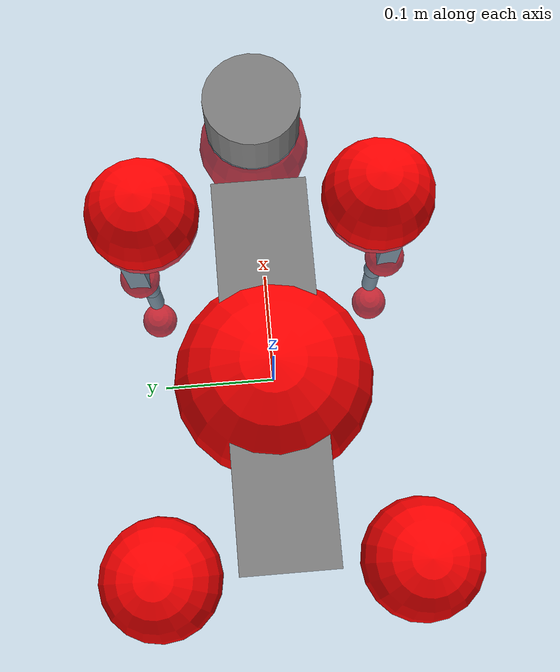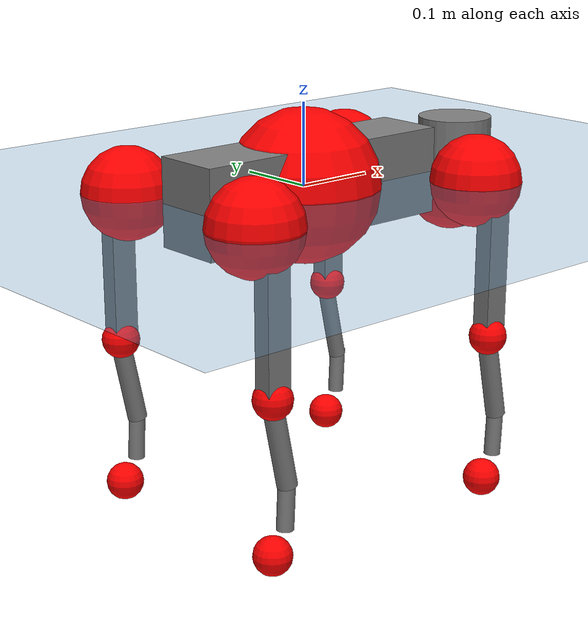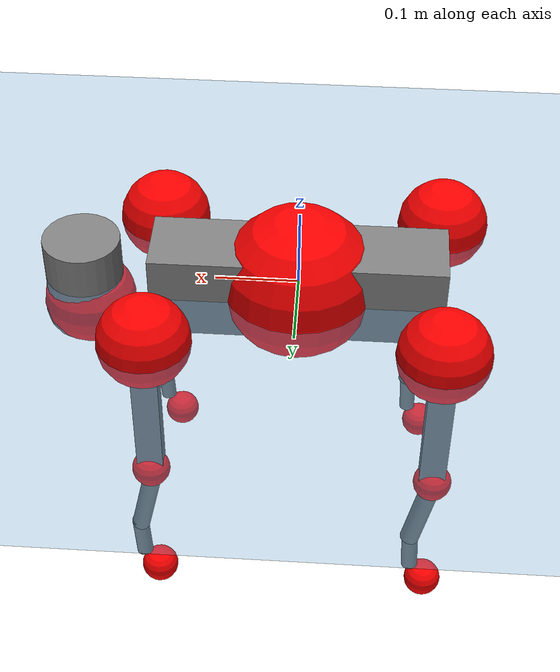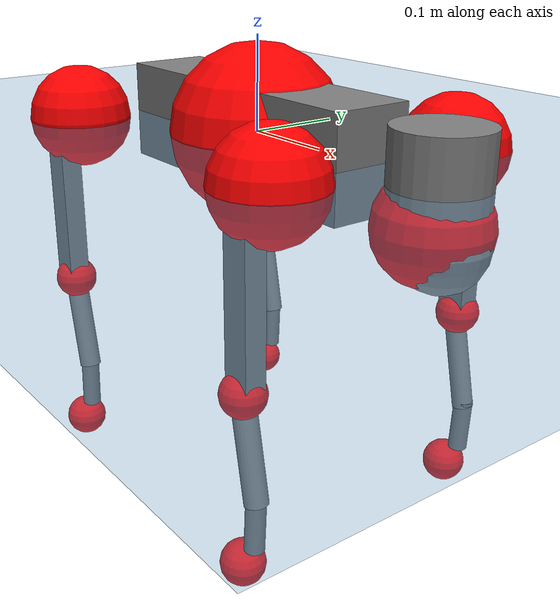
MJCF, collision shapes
<mujoco model="go2">
  <compiler angle="radian" assetdir="assets" balanceinertia="true" inertiafromgeom="false"/>

  <option timestep="0.005" density="1.2" viscosity="2e-05"/>

  <size nkey="1"/>

  <visual>
    <quality shadowsize="8192"/>
    <map shadowclip="0.5"/>
  </visual>

  <default>
    <default class="/">
      <geom contype="0" conaffinity="0" group="1" solref="-1000 -80"/>
      <site size="0.01 0.005 0.005" group="5"/>
      <general forcelimited="true" biastype="affine" gainprm="20" biasprm="0 -20 -0.5"/>
      <default class="go2">
        <joint armature="0.01" damping="0.01" frictionloss="0.2"/>
        <geom condim="1" margin="0.001"/>
        <default class="visual">
          <geom type="mesh" group="2"/>
        </default>
        <default class="collision">
          <geom group="3"/>
          <default class="foot">
            <geom size="0.022 0 0" condim="6" priority="1" friction="0.8 0.02 0.01" solimp="0.015 1 0.022"/>
          </default>
        </default>
        <default class="reward_collision_sphere">
          <geom group="5" rgba="1 0 0 1"/>
        </default>
      </default>
    </default>
  </default>

  <asset>
    <texture type="skybox" colorspace="auto" name="//unnamed_texture_0" builtin="gradient" rgb1="0.95 0.95 0.95" rgb2="0.95 0.95 0.95" width="100" height="600"/>
    <texture type="2d" colorspace="auto" name="texplane" builtin="checker" rgb1="0.345 0.575 0.748" rgb2="0.345 0.575 0.748" markrgb="1 1 1" width="512" height="512"/>
    <material name="MatPlane" class="/" texture="texplane" texuniform="true" texrepeat="2 2" specular="0.9"/>
    <material name="metal" class="/" rgba="0.9 0.95 0.95 1"/>
    <material name="black" class="/" rgba="0 0 0 1"/>
    <material name="white" class="/"/>
    <material name="gray" class="/" rgba="0.671705 0.692426 0.77427 1"/>
    <mesh name="base_0" class="/" file="base_0.obj"/>
    <mesh name="base_1" class="/" file="base_1.obj"/>
    <mesh name="base_2" class="/" file="base_2.obj"/>
    <mesh name="base_3" class="/" file="base_3.obj"/>
    <mesh name="base_4" class="/" file="base_4.obj"/>
    <mesh name="hip_0" class="/" file="hip_0.obj"/>
    <mesh name="hip_1" class="/" file="hip_1.obj"/>
    <mesh name="thigh_0" class="/" file="thigh_0.obj"/>
    <mesh name="thigh_1" class="/" file="thigh_1.obj"/>
    <mesh name="thigh_mirror_0" class="/" file="thigh_mirror_0.obj"/>
    <mesh name="thigh_mirror_1" class="/" file="thigh_mirror_1.obj"/>
    <mesh name="calf_0" class="/" file="calf_0.obj"/>
    <mesh name="calf_1" class="/" file="calf_1.obj"/>
    <mesh name="calf_mirror_0" class="/" file="calf_mirror_0.obj"/>
    <mesh name="calf_mirror_1" class="/" file="calf_mirror_1.obj"/>
    <mesh name="foot" class="/" file="foot.obj"/>
  </asset>

  <worldbody>
    <geom name="floor" class="/" size="100 100 0.125" type="plane" group="0" material="MatPlane"/>
    <light name="toplight_shadow" class="/" pos="0 0 5" dir="0.0990148 0.0990148 -0.990148" type="directional" ambient="0.04 0.04 0.04" diffuse="0.55 0.55 0.55" specular="0.12 0.12 0.12"/>
    <light name="toplight_fill" class="/" pos="0 0 5" dir="0.0990148 0.0990148 -0.990148" type="directional" castshadow="false" ambient="0.04 0.04 0.04" diffuse="0.3 0.3 0.3" specular="0.08 0.08 0.08"/>
    <body name="trunk" childclass="go2" pos="0.000265557 -0.000307117 0.000657952" quat="1 0.000678384 -0.000306319 0.000109834">
      <inertial pos="0.0171557 -0.00294578 -0.00602689" quat="0.00238348 0.713443 -0.000823397 0.700709" mass="5.71972" diaginertia="0.0648017 0.0999808 0.0128455"/>
      <joint name="//unnamed_joint_0" type="free" armature="0" damping="0" frictionloss="0"/>
      <geom name="//unnamed_geom_1" class="visual" material="black" mesh="base_0"/>
      <geom name="//unnamed_geom_2" class="visual" material="black" mesh="base_1"/>
      <geom name="//unnamed_geom_3" class="visual" material="black" mesh="base_2"/>
      <geom name="//unnamed_geom_4" class="visual" material="white" mesh="base_3"/>
      <geom name="//unnamed_geom_5" class="visual" material="gray" mesh="base_4"/>
      <geom name="trunk_1" class="collision" size="0.175226 0.0435503 0.0530988" type="box"/>
      <geom name="trunk_2" class="collision" size="0.0465779 0.0419201" pos="0.258189 0 0.00882255" type="cylinder"/>
      <geom name="trunk_3" class="collision" size="0.0437832" pos="0.265437 0 -0.0529353"/>
      <geom name="//unnamed_geom_9" class="reward_collision_sphere" size="0.0931557"/>
      <geom name="//unnamed_geom_10" class="reward_collision_sphere" size="0.0558934" pos="0.25366 0 -0.0397015"/>
      <site name="imu" pos="-0.0107378 -0.000564823 0.0248348" size="0.00931557"/>
      <camera name="track" pos="0 -2.01298 0" quat="0.707107 0.707107 0 0" mode="trackcom"/>
      <camera name="ego_camera" pos="0.282649 0 0.0397015" quat="-0.5 -0.5 0.5 0.5"/>
      <body name="FL_hip" pos="0.171695 0.0438911 -0.00259474" quat="1 2.40764e-05 3.07733e-05 -0.00049562">
        <inertial pos="-0.0048676 -0.000570564 0.000187607" quat="0.497192 0.499365 0.505367 0.498036" mass="0.548969" diaginertia="0.000531015 0.000580705 0.000249882"/>
        <joint name="FL_hip_joint" pos="0 0 0" axis="0.999929 0.011837 -0.00120085" range="-1.04688 1.07315" armature="0.00936226" damping="0.0171103" frictionloss="0.161895"/>
        <geom name="//unnamed_geom_11" class="visual" material="metal" mesh="hip_0"/>
        <geom name="//unnamed_geom_12" class="visual" material="gray" mesh="hip_1"/>
        <geom name="//unnamed_geom_13" class="collision" size="0.0428516 0.0186311" pos="0 0.0805191 0" quat="0.707107 0.707107 0 0" type="cylinder"/>
        <geom name="//unnamed_geom_14" class="reward_collision_sphere" size="0.0558934" pos="0 0.0704543 0"/>
        <body name="FL_thigh" pos="-0.00304586 0.0978063 0.00265761" quat="0.999999 -8.7152e-05 -0.00121698 0.000322373">
          <inertial pos="-0.00379384 -0.0224936 -0.0266615" quat="0.828206 0.0792415 -0.00755986 0.554742" mass="0.908683" diaginertia="0.00367037 0.00593721 0.000475609"/>
          <joint name="FL_thigh_joint" pos="0 0 0" axis="-0.00186704 0.999996 0.0021435" stiffness="0.00927707" range="-1.51493 3.54353" armature="0.009454" damping="0.0176591" frictionloss="0.165374"/>
          <geom name="//unnamed_geom_15" class="visual" material="metal" mesh="thigh_0"/>
          <geom name="//unnamed_geom_16" class="visual" material="gray" mesh="thigh_1"/>
          <geom name="//unnamed_geom_17" class="collision" size="0.0992108 0.0114116 0.0158365" pos="0 0 -0.0939601" quat="0.707107 0 0.707107 0" type="box"/>
          <body name="FL_calf" pos="0.000313851 0.00190804 -0.187628" quat="1 0.000228163 0.000232218 8.91477e-05">
            <inertial pos="0.00530107 -0.00119001 -0.126272" quat="0.711596 0.000789738 -0.00240612 0.702584" mass="0.198085" diaginertia="0.000887955 0.00151242 2.84822e-05"/>
            <joint name="FL_calf_joint" pos="0 0 0" axis="0.0168446 0.999848 -0.00441058" range="-2.67174 -0.82717" armature="0.00953997" damping="0.00204279" frictionloss="0.191563"/>
            <geom name="//unnamed_geom_18" class="visual" material="gray" mesh="calf_0"/>
            <geom name="//unnamed_geom_19" class="visual" material="black" mesh="calf_1"/>
            <geom name="FL_calf0" class="collision" size="0.0111787 0.0558934" pos="0.00724742 0 -0.0529353" quat="0.994493 0 -0.104807 0" type="cylinder"/>
            <geom name="//unnamed_geom_21" class="collision" size="0.0102471 0.0302756" pos="0.0181186 0 -0.130574" quat="0.999688 0 0.0249974 0" type="cylinder"/>
            <geom name="//unnamed_geom_22" class="visual" pos="0 0 -0.18792" quat="1 0 0 0" material="black" mesh="foot"/>
            <geom name="FL_foot" class="foot" size="0.0157433" pos="-0.00181186 0 -0.18792"/>
            <geom name="//unnamed_geom_24" class="reward_collision_sphere" size="0.0232889"/>
            <geom name="//unnamed_geom_25" class="reward_collision_sphere" size="0.0232889" pos="-0.00181186 0 -0.18792"/>
            <site name="FL_foot" class="foot" pos="-0.00181186 0 -0.18792" size="0.00931557"/>
          </body>
        </body>
      </body>
      <body name="FR_hip" pos="0.173093 -0.045787 -0.000545227" quat="1 0.000110971 0.00023809 0.000114405">
        <inertial pos="-0.00715362 -0.00344509 -0.0030443" quat="0.492952 0.50082 0.501615 0.504539" mass="0.545752" diaginertia="0.000513882 0.000627069 0.000244463"/>
        <joint name="FR_hip_joint" pos="0 0 0" axis="0.999892 0.0136466 0.00538147" stiffness="0.00274257" range="-1.06982 1.04094" armature="0.00956426" damping="0" frictionloss="0.194411"/>
        <geom name="//unnamed_geom_26" class="visual" pos="0 1.08228e-09 4.64213e-08" quat="4.63268e-05 1 0 0" material="metal" mesh="hip_0"/>
        <geom name="//unnamed_geom_27" class="visual" pos="0 1.75451e-09 -1.14818e-07" quat="4.63268e-05 1 0 0" material="gray" mesh="hip_1"/>
        <geom name="//unnamed_geom_28" class="collision" size="0.0428516 0.0186311" pos="0 -0.0805191 0" quat="0.707107 0.707107 0 0" type="cylinder"/>
        <geom name="//unnamed_geom_29" class="reward_collision_sphere" size="0.0558934" pos="0 -0.0704543 0"/>
        <body name="FR_thigh" pos="0.00244584 -0.0985712 -0.0021157" quat="0.999999 0.000313609 -0.000226629 0.00123934">
          <inertial pos="-0.00109296 0.0222658 -0.0310674" quat="0.560552 -0.0152732 0.0833399 0.823773" mass="0.974667" diaginertia="0.00355478 0.00588639 0.000489527"/>
          <joint name="FR_thigh_joint" pos="0 0 0" axis="-0.00227304 -0.999997 -0.000541695" range="-3.47909 1.58448" armature="0.00822856" damping="0.0162997" frictionloss="0.198604"/>
          <geom name="//unnamed_geom_30" class="visual" material="metal" mesh="thigh_mirror_0"/>
          <geom name="//unnamed_geom_31" class="visual" material="gray" mesh="thigh_mirror_1"/>
          <geom name="//unnamed_geom_32" class="collision" size="0.0992108 0.0114116 0.0158365" pos="0 0 -0.0939601" quat="0.707107 0 0.707107 0" type="box"/>
          <body name="FR_calf" pos="-0.00227432 -0.000973295 -0.188531" quat="0.999999 -0.00116747 -0.000193301 1.80238e-05">
            <inertial pos="0.00282752 0.000822831 -0.125104" quat="0.698605 0.00177328 0.00724759 0.715469" mass="0.207858" diaginertia="0.000955714 0.00153414 2.94399e-05"/>
            <joint name="FR_calf_joint" pos="0 0 0" axis="0.00485443 -0.999955 0.00812238" range="0.789178 2.67394" armature="0.010769" damping="0.0194148" frictionloss="0.200653"/>
            <geom name="//unnamed_geom_33" class="visual" material="gray" mesh="calf_mirror_0"/>
            <geom name="//unnamed_geom_34" class="visual" material="black" mesh="calf_mirror_1"/>
            <geom name="FR_calf0" class="collision" size="0.0121102 0.0558934" pos="0.00905928 0 -0.0529353" quat="0.995004 0 -0.0998334 0" type="cylinder"/>
            <geom name="//unnamed_geom_36" class="collision" size="0.0102471 0.0302756" pos="0.0181186 0 -0.130574" quat="0.999688 0 0.0249974 0" type="cylinder"/>
            <geom name="//unnamed_geom_37" class="visual" pos="0 0 -0.18792" quat="1 0 0 0" material="black" mesh="foot"/>
            <geom name="FR_foot" class="foot" size="0.0201008" pos="-0.00181186 0 -0.18792"/>
            <geom name="//unnamed_geom_39" class="reward_collision_sphere" size="0.0232889"/>
            <geom name="//unnamed_geom_40" class="reward_collision_sphere" size="0.0232889" pos="-0.00181186 0 -0.18792"/>
            <site name="FR_foot" class="foot" pos="-0.00181186 0 -0.18792" size="0.00931557"/>
          </body>
        </body>
      </body>
      <body name="RL_hip" pos="-0.172416 0.0447126 -0.00278928" quat="1 -5.35827e-05 -1.61035e-05 -3.64638e-05">
        <inertial pos="0.00491766 0.0049836 -0.00103346" quat="0.512193 0.501657 0.48519 0.500589" mass="0.564089" diaginertia="0.000566905 0.00063885 0.000257257"/>
        <joint name="RL_hip_joint" pos="0 0 0" axis="-0.999989 -0.00162411 0.0044351" range="-1.05998 1.05482" armature="0.0098961" damping="0" frictionloss="0.185333"/>
        <geom name="//unnamed_geom_41" class="visual" pos="-2.06231e-10 0 -4.04261e-08" quat="4.63268e-05 0 1 0" material="metal" mesh="hip_0"/>
        <geom name="//unnamed_geom_42" class="visual" pos="-3.34325e-10 0 -3.58522e-08" quat="4.63268e-05 0 1 0" material="gray" mesh="hip_1"/>
        <geom name="//unnamed_geom_43" class="collision" size="0.0428516 0.0186311" pos="0 0.0805191 0" quat="0.707107 0.707107 0 0" type="cylinder"/>
        <geom name="//unnamed_geom_44" class="reward_collision_sphere" size="0.0558934" pos="0 0.0704543 0"/>
        <body name="RL_thigh" pos="0.00047104 0.0950335 0.00134544" quat="1 0.000401415 -0.000144395 0.000220326">
          <inertial pos="-0.00510117 -0.021479 -0.0311966" quat="0.82876 0.0848619 -0.0222051 0.552687" mass="0.886213" diaginertia="0.00341852 0.00602591 0.000458682"/>
          <joint name="RL_thigh_joint" pos="0 0 0" axis="0.00314049 0.999979 -0.00559545" stiffness="0.0123853" range="-0.559475 4.48542" armature="0.0089576" damping="0" frictionloss="0.188319"/>
          <geom name="//unnamed_geom_45" class="visual" material="metal" mesh="thigh_0"/>
          <geom name="//unnamed_geom_46" class="visual" material="gray" mesh="thigh_1"/>
          <geom name="//unnamed_geom_47" class="collision" size="0.0992108 0.0114116 0.0158365" pos="0 0 -0.0939601" quat="0.707107 0 0.707107 0" type="box"/>
          <body name="RL_calf" pos="-0.00127542 0.000821509 -0.188781" quat="1 -0.00018732 -0.000166393 -0.000124591">
            <inertial pos="0.00752045 0.00211715 -0.125256" quat="0.712111 0.0137995 -0.00569832 0.701908" mass="0.199557" diaginertia="0.000897942 0.00159698 2.91015e-05"/>
            <joint name="RL_calf_joint" pos="0 0 0" axis="0.00364914 0.999989 -0.00297567" stiffness="0.00797627" range="-2.66755 -0.890438" armature="0.0105035" damping="0.0178671" frictionloss="0.16035"/>
            <geom name="//unnamed_geom_48" class="visual" material="gray" mesh="calf_0"/>
            <geom name="//unnamed_geom_49" class="visual" material="black" mesh="calf_1"/>
            <geom name="RL_calf0" class="collision" size="0.0121102 0.0558934" pos="0.00905928 0 -0.0529353" quat="0.995004 0 -0.0998334 0" type="cylinder"/>
            <geom name="//unnamed_geom_51" class="collision" size="0.0102471 0.0302756" pos="0.0181186 0 -0.130574" quat="0.999688 0 0.0249974 0" type="cylinder"/>
            <geom name="//unnamed_geom_52" class="visual" pos="0 0 -0.18792" quat="1 0 0 0" material="black" mesh="foot"/>
            <geom name="RL_foot" class="foot" size="0.0186094" pos="-0.00181186 0 -0.18792"/>
            <geom name="//unnamed_geom_54" class="reward_collision_sphere" size="0.0232889"/>
            <geom name="//unnamed_geom_55" class="reward_collision_sphere" size="0.0232889" pos="-0.00181186 0 -0.18792"/>
            <site name="RL_foot" class="foot" pos="-0.00181186 0 -0.18792" size="0.00931557"/>
          </body>
        </body>
      </body>
      <body name="RR_hip" pos="-0.17342 -0.0482708 0.0018713" quat="1 -0.000361489 -7.37373e-05 -0.000355639">
        <inertial pos="0.00249805 0.000246419 -0.0025346" quat="0.50116 0.491204 0.496796 0.510637" mass="0.553591" diaginertia="0.000524245 0.000604841 0.000251051"/>
        <joint name="RR_hip_joint" pos="0 0 0" axis="-0.999917 -0.00751818 -0.0104736" range="-1.09988 1.08572" armature="0.00876454" damping="0" frictionloss="0.188046"/>
        <geom name="//unnamed_geom_56" class="visual" pos="2.09713e-10 1.08228e-09 -8.68474e-08" quat="2.14617e-09 4.63268e-05 4.63268e-05 -1" material="metal" mesh="hip_0"/>
        <geom name="//unnamed_geom_57" class="visual" pos="3.25714e-10 1.75451e-09 7.89655e-08" quat="2.14617e-09 4.63268e-05 4.63268e-05 -1" material="gray" mesh="hip_1"/>
        <geom name="//unnamed_geom_58" class="collision" size="0.0428516 0.0186311" pos="0 -0.0805191 0" quat="0.707107 0.707107 0 0" type="cylinder"/>
        <geom name="//unnamed_geom_59" class="reward_collision_sphere" size="0.0558934" pos="0 -0.0704543 0"/>
        <body name="RR_thigh" pos="0.00223341 -0.0950379 -0.00143953" quat="0.999999 -0.000644809 -0.000624961 0.000851482">
          <inertial pos="-0.00274713 0.0248189 -0.029301" quat="0.550672 -0.0195105 0.0858378 0.830067" mass="0.870528" diaginertia="0.00339334 0.00590013 0.000461074"/>
          <joint name="RR_thigh_joint" pos="0 0 0" axis="0.0018017 -0.999998 0.00131098" stiffness="0.00209793" range="-4.49068 0.520859" armature="0.00976464" damping="0.0204815" frictionloss="0.185243"/>
          <geom name="//unnamed_geom_60" class="visual" material="metal" mesh="thigh_mirror_0"/>
          <geom name="//unnamed_geom_61" class="visual" material="gray" mesh="thigh_mirror_1"/>
          <geom name="//unnamed_geom_62" class="collision" size="0.0992108 0.0114116 0.0158365" pos="0 0 -0.0939601" quat="0.707107 0 0.707107 0" type="box"/>
          <body name="RR_calf" pos="0.000978267 0.00208523 -0.187922" quat="0.999999 0.000276289 0.000663301 0.00093345">
            <inertial pos="0.00832178 -0.000840076 -0.125121" quat="0.703647 -0.0114104 0.0137803 0.710324" mass="0.197339" diaginertia="0.000883978 0.00151245 2.76536e-05"/>
            <joint name="RR_calf_joint" pos="0 0 0" axis="-0.00732912 -0.999965 -0.0039605" range="0.830331 2.77702" armature="0.00921945" damping="0.0194474" frictionloss="0.199838"/>
            <geom name="//unnamed_geom_63" class="visual" material="gray" mesh="calf_mirror_0"/>
            <geom name="//unnamed_geom_64" class="visual" material="black" mesh="calf_mirror_1"/>
            <geom name="RR_calf0" class="collision" size="0.0121102 0.0558934" pos="0.00905928 0 -0.0529353" quat="0.995004 0 -0.0998334 0" type="cylinder"/>
            <geom name="//unnamed_geom_66" class="collision" size="0.0102471 0.0302756" pos="0.0181186 0 -0.130574" quat="0.999688 0 0.0249974 0" type="cylinder"/>
            <geom name="//unnamed_geom_67" class="visual" pos="0 0 -0.18792" quat="1 0 0 0" material="black" mesh="foot"/>
            <geom name="RR_foot" class="foot" size="0.0189978" pos="-0.00181186 0 -0.18792"/>
            <geom name="//unnamed_geom_69" class="reward_collision_sphere" size="0.0232889"/>
            <geom name="//unnamed_geom_70" class="reward_collision_sphere" size="0.0232889" pos="-0.00181186 0 -0.18792"/>
            <site name="RR_foot" class="foot" pos="-0.00181186 0 -0.18792" size="0.00931557"/>
          </body>
        </body>
      </body>
    </body>
  </worldbody>

  <contact>
    <pair class="/" geom1="floor" geom2="FL_foot" name="//unnamed_contact_0"/>
    <pair class="/" geom1="floor" geom2="FR_foot" name="//unnamed_contact_1"/>
    <pair class="/" geom1="floor" geom2="RL_foot" name="//unnamed_contact_2"/>
    <pair class="/" geom1="floor" geom2="RR_foot" name="//unnamed_contact_3"/>
  </contact>

  <actuator>
    <general name="FL_hip" class="/" joint="FL_hip_joint" forcerange="-19.6871 19.6871" gainprm="17.7055" biasprm="0 -17.7055 -0.440307"/>
    <general name="FL_thigh" class="/" joint="FL_thigh_joint" forcerange="-20.1623 20.1623" gainprm="17.7055" biasprm="0 -17.7055 -0.440307"/>
    <general name="FL_calf" class="/" joint="FL_calf_joint" forcerange="-41.0851 41.0851" gainprm="17.7055" biasprm="0 -17.7055 -0.440307"/>
    <general name="FR_hip" class="/" joint="FR_hip_joint" forcerange="-22.3417 22.3417" gainprm="17.7055" biasprm="0 -17.7055 -0.440307"/>
    <general name="FR_thigh" class="/" joint="FR_thigh_joint" forcerange="-24.3024 24.3024" gainprm="17.7055" biasprm="0 -17.7055 -0.440307"/>
    <general name="FR_calf" class="/" joint="FR_calf_joint" forcerange="-43.4444 43.4444" gainprm="17.7055" biasprm="0 -17.7055 -0.440307"/>
    <general name="RL_hip" class="/" joint="RL_hip_joint" forcerange="-21.9034 21.9034" gainprm="17.7055" biasprm="0 -17.7055 -0.440307"/>
    <general name="RL_thigh" class="/" joint="RL_thigh_joint" forcerange="-19.8289 19.8289" gainprm="17.7055" biasprm="0 -17.7055 -0.440307"/>
    <general name="RL_calf" class="/" joint="RL_calf_joint" forcerange="-43.7177 43.7177" gainprm="17.7055" biasprm="0 -17.7055 -0.440307"/>
    <general name="RR_hip" class="/" joint="RR_hip_joint" forcerange="-22.9631 22.9631" gainprm="17.7055" biasprm="0 -17.7055 -0.440307"/>
    <general name="RR_thigh" class="/" joint="RR_thigh_joint" forcerange="-24.3475 24.3475" gainprm="17.7055" biasprm="0 -17.7055 -0.440307"/>
    <general name="RR_calf" class="/" joint="RR_calf_joint" forcerange="-41.9112 41.9112" gainprm="17.7055" biasprm="0 -17.7055 -0.440307"/>
  </actuator>

  <sensor>
    <gyro site="imu" name="imu_angular_velocity"/>
    <velocimeter site="imu" name="imu_linear_velocity"/>
    <framelinvel objtype="site" objname="FL_foot" name="FL_foot_global_linear_velocity"/>
    <framelinvel objtype="site" objname="FR_foot" name="FR_foot_global_linear_velocity"/>
    <framelinvel objtype="site" objname="RL_foot" name="RL_foot_global_linear_velocity"/>
    <framelinvel objtype="site" objname="RR_foot" name="RR_foot_global_linear_velocity"/>
  </sensor>

  <keyframe>
    <key name="home" qpos="0 0 0.325 1 0 0 0 0.1 0.8 -1.5 -0.1 -0.8 1.5 -0.1 0.8 -1.5 0.1 -0.8 1.5"/>
  </keyframe>
</mujoco>
